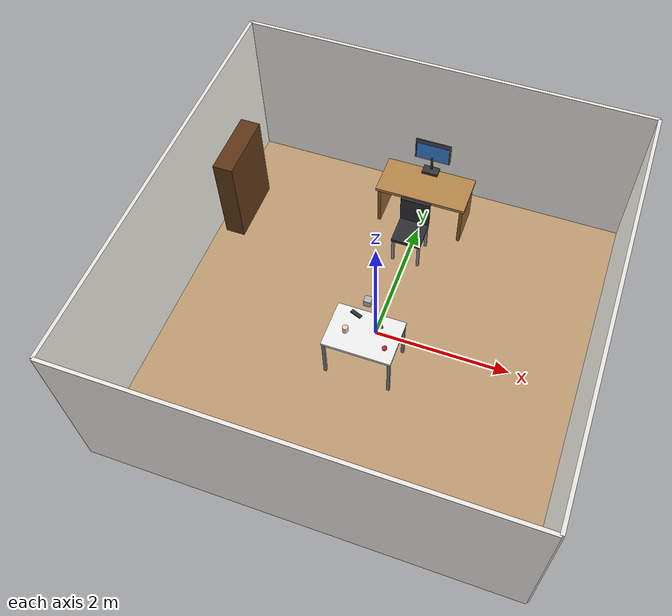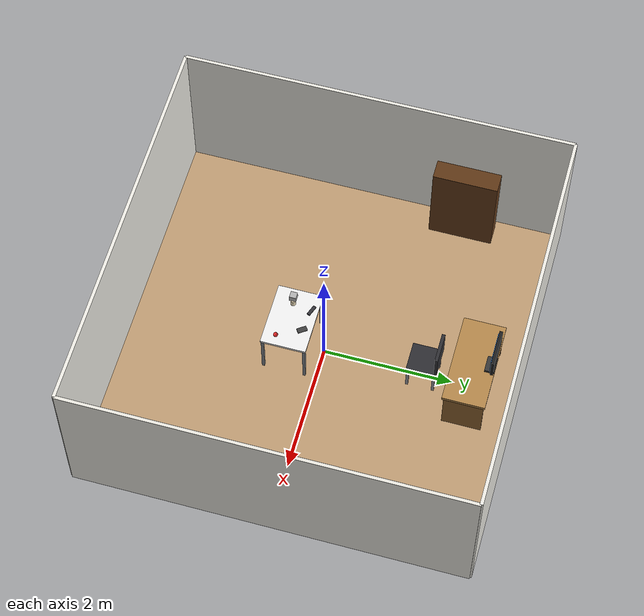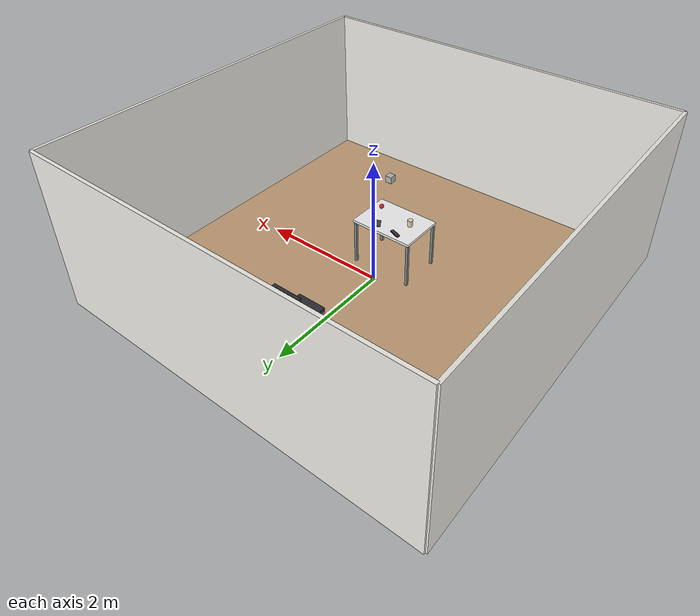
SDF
<?xml version="1.0" ?>
<sdf version="1.10">
  <world name="bps_room">

    <!-- ==================== PHYSICS ==================== -->
    <physics name="1ms" type="ignored">
      <max_step_size>0.001</max_step_size>
      <real_time_factor>1</real_time_factor>
      <real_time_update_rate>1000</real_time_update_rate>
    </physics>

    <gravity>0 0 -9.8</gravity>
    <magnetic_field>5.5645e-06 2.28758e-05 -4.23884e-05</magnetic_field>
    <atmosphere type="adiabatic"/>

    <!-- ==================== SCENE ==================== -->
    <scene>
      <ambient>0.4 0.4 0.4 1</ambient>
      <background>0.7 0.7 0.7 1</background>
      <shadows>true</shadows>
    </scene>

    <!-- ==================== PLUGINS ==================== -->
    <plugin name="gz::sim::systems::Physics"
            filename="gz-sim-physics-system"/>
    <plugin name="gz::sim::systems::UserCommands"
            filename="gz-sim-user-commands-system"/>
    <plugin name="gz::sim::systems::SceneBroadcaster"
            filename="gz-sim-scene-broadcaster-system"/>
    <plugin name="gz::sim::systems::Sensors"
            filename="gz-sim-sensors-system">
      <render_engine>ogre2</render_engine>
    </plugin>
    <plugin name="gz::sim::systems::Contact"
            filename="gz-sim-contact-system"/>
    <plugin
    filename="gz-sim-label-system"
    name="gz::sim::systems::Label"/>

    <!-- ==================== LIGHTING ==================== -->
    <light name="sun" type="directional">
      <pose>0 0 10 0 0 0</pose>
      <cast_shadows>true</cast_shadows>
      <intensity>1</intensity>
      <direction>-0.5 0.1 -0.9</direction>
      <diffuse>0.8 0.8 0.8 1</diffuse>
      <specular>0.2 0.2 0.2 1</specular>
      <attenuation>
        <range>1000</range>
        <linear>0.01</linear>
        <constant>0.9</constant>
        <quadratic>0.001</quadratic>
      </attenuation>
      <spot>
        <inner_angle>0</inner_angle>
        <outer_angle>0</outer_angle>
        <falloff>0</falloff>
      </spot>
    </light>

    <light name="ambient_fill" type="directional">
      <pose>0 0 4 0 0 0</pose>
      <diffuse>0.4 0.4 0.4 1</diffuse>
      <specular>0.0 0.0 0.0 1</specular>
      <direction>0.3 -0.3 -1</direction>
    </light>

    <!-- ==================== ROOM SHELL ==================== -->

    <!-- Floor: 6 m x 6 m — warm light oak -->
    <model name="floor">
      <static>true</static>
      <pose>0 0 0 0 0 0</pose>
      <link name="link">
        <collision name="collision">
          <geometry><box><size>6 6 0.02</size></box></geometry>
        </collision>
        <visual name="visual">
          <geometry><box><size>6 6 0.02</size></box></geometry>
          <material>
            <ambient>0.76 0.62 0.46 1</ambient>
            <diffuse>0.76 0.62 0.46 1</diffuse>
          </material>
        </visual>
      </link>
    </model>

    <!-- Wall North (y = +3) — thickness 0.05, clean off-white -->
    <model name="wall_north">
      <static>true</static>
      <pose>0 3 1.25 0 0 0</pose>
      <link name="link">
        <collision name="collision">
          <geometry><box><size>6 0.05 2.5</size></box></geometry>
        </collision>
        <visual name="visual">
          <geometry><box><size>6 0.05 2.5</size></box></geometry>
          <material>
            <ambient>0.95 0.94 0.91 1</ambient>
            <diffuse>0.95 0.94 0.91 1</diffuse>
          </material>
        </visual>
      </link>
    </model>

    <!-- Wall South (y = -3) — thickness 0.05 -->
    <model name="wall_south">
      <static>true</static>
      <pose>0 -3 1.25 0 0 0</pose>
      <link name="link">
        <collision name="collision">
          <geometry><box><size>6 0.05 2.5</size></box></geometry>
        </collision>
        <visual name="visual">
          <geometry><box><size>6 0.05 2.5</size></box></geometry>
          <material>
            <ambient>0.95 0.94 0.91 1</ambient>
            <diffuse>0.95 0.94 0.91 1</diffuse>
          </material>
        </visual>
      </link>
    </model>

    <!-- Wall East (x = +3) — thickness 0.05 -->
    <model name="wall_east">
      <static>true</static>
      <pose>3 0 1.25 0 0 0</pose>
      <link name="link">
        <collision name="collision">
          <geometry><box><size>0.05 6 2.5</size></box></geometry>
        </collision>
        <visual name="visual">
          <geometry><box><size>0.05 6 2.5</size></box></geometry>
          <material>
            <ambient>0.93 0.92 0.89 1</ambient>
            <diffuse>0.93 0.92 0.89 1</diffuse>
          </material>
        </visual>
      </link>
    </model>

    <!-- Wall West (x = -3) — thickness 0.05 -->
    <model name="wall_west">
      <static>true</static>
      <pose>-3 0 1.25 0 0 0</pose>
      <link name="link">
        <collision name="collision">
          <geometry><box><size>0.05 6 2.5</size></box></geometry>
        </collision>
        <visual name="visual">
          <geometry><box><size>0.05 6 2.5</size></box></geometry>
          <material>
            <ambient>0.93 0.92 0.89 1</ambient>
            <diffuse>0.93 0.92 0.89 1</diffuse>
          </material>
        </visual>
      </link>
    </model>

    <!-- ==================== BOOKSHELF (west wall) ==================== -->

    <!-- Body — dark walnut -->
    <model name="bookshelf_body">
      <static>true</static>
      <pose>-2.7 1.5 0.75 0 0 0</pose>
      <link name="link">
        <collision name="collision">
          <geometry><box><size>0.3 1.0 1.5</size></box></geometry>
        </collision>
        <visual name="visual">
          <geometry><box><size>0.3 1.0 1.5</size></box></geometry>
          <material>
            <ambient>0.38 0.22 0.09 1</ambient>
            <diffuse>0.38 0.22 0.09 1</diffuse>
          </material>
        </visual>
      </link>
    </model>

    <!-- Shelves — slightly lighter walnut -->
    <model name="shelf_1">
      <static>true</static>
      <pose>-2.7 1.5 0.4 0 0 0</pose>
      <link name="link">
        <collision name="collision">
          <geometry><box><size>0.28 0.95 0.02</size></box></geometry>
        </collision>
        <visual name="visual">
          <geometry><box><size>0.28 0.95 0.02</size></box></geometry>
          <material>
            <ambient>0.50 0.32 0.14 1</ambient>
            <diffuse>0.50 0.32 0.14 1</diffuse>
          </material>
        </visual>
      </link>
    </model>

    <model name="shelf_2">
      <static>true</static>
      <pose>-2.7 1.5 0.85 0 0 0</pose>
      <link name="link">
        <collision name="collision">
          <geometry><box><size>0.28 0.95 0.02</size></box></geometry>
        </collision>
        <visual name="visual">
          <geometry><box><size>0.28 0.95 0.02</size></box></geometry>
          <material>
            <ambient>0.50 0.32 0.14 1</ambient>
            <diffuse>0.50 0.32 0.14 1</diffuse>
          </material>
        </visual>
      </link>
    </model>

    <model name="shelf_3">
      <static>true</static>
      <pose>-2.7 1.5 1.25 0 0 0</pose>
      <link name="link">
        <collision name="collision">
          <geometry><box><size>0.28 0.95 0.02</size></box></geometry>
        </collision>
        <visual name="visual">
          <geometry><box><size>0.28 0.95 0.02</size></box></geometry>
          <material>
            <ambient>0.50 0.32 0.14 1</ambient>
            <diffuse>0.50 0.32 0.14 1</diffuse>
          </material>
        </visual>
      </link>
    </model>

    <!-- Books — row 1: warm red spines -->
    <model name="books_row1">
      <static>true</static>
      <pose>-2.62 1.5 0.62 0 0 0</pose>
      <link name="link">
        <visual name="visual">
          <geometry><box><size>0.04 0.8 0.2</size></box></geometry>
          <material>
            <ambient>0.78 0.18 0.18 1</ambient>
            <diffuse>0.78 0.18 0.18 1</diffuse>
          </material>
        </visual>
      </link>
    </model>

    <!-- Books — row 2: navy blue spines -->
    <model name="books_row2">
      <static>true</static>
      <pose>-2.62 1.5 1.06 0 0 0</pose>
      <link name="link">
        <visual name="visual">
          <geometry><box><size>0.04 0.7 0.18</size></box></geometry>
          <material>
            <ambient>0.18 0.32 0.72 1</ambient>
            <diffuse>0.18 0.32 0.72 1</diffuse>
          </material>
        </visual>
      </link>
    </model>

    <!-- ==================== DESK + CHAIR (north wall) ==================== -->

    <!-- Desk surface — light oak -->
    <model name="desk">
      <static>true</static>
      <pose>0 2.3 0.75 0 0 0</pose>
      <link name="link">
        <collision name="collision">
          <geometry><box><size>1.4 0.65 0.05</size></box></geometry>
        </collision>
        <visual name="visual">
          <geometry><box><size>1.4 0.65 0.05</size></box></geometry>
          <material>
            <ambient>0.72 0.54 0.30 1</ambient>
            <diffuse>0.72 0.54 0.30 1</diffuse>
          </material>
        </visual>
      </link>
    </model>

    <!-- Desk legs — slightly darker oak -->
    <model name="desk_leg_left">
      <static>true</static>
      <pose>-0.65 2.3 0.375 0 0 0</pose>
      <link name="link">
        <collision name="collision">
          <geometry><box><size>0.05 0.6 0.75</size></box></geometry>
        </collision>
        <visual name="visual">
          <geometry><box><size>0.05 0.6 0.75</size></box></geometry>
          <material>
            <ambient>0.55 0.38 0.18 1</ambient>
            <diffuse>0.55 0.38 0.18 1</diffuse>
          </material>
        </visual>
      </link>
    </model>

    <model name="desk_leg_right">
      <static>true</static>
      <pose>0.65 2.3 0.375 0 0 0</pose>
      <link name="link">
        <collision name="collision">
          <geometry><box><size>0.05 0.6 0.75</size></box></geometry>
        </collision>
        <visual name="visual">
          <geometry><box><size>0.05 0.6 0.75</size></box></geometry>
          <material>
            <ambient>0.55 0.38 0.18 1</ambient>
            <diffuse>0.55 0.38 0.18 1</diffuse>
          </material>
        </visual>
      </link>
    </model>

    <!-- Monitor base — matte charcoal -->
    <model name="monitor_base">
      <static>true</static>
      <pose>0 2.55 0.82 0 0 0</pose>
      <link name="link">
        <collision name="collision">
          <geometry><box><size>0.25 0.15 0.04</size></box></geometry>
        </collision>
        <visual name="visual">
          <geometry><box><size>0.25 0.15 0.04</size></box></geometry>
          <material>
            <ambient>0.22 0.22 0.22 1</ambient>
            <diffuse>0.22 0.22 0.22 1</diffuse>
          </material>
        </visual>
      </link>
    </model>

    <!-- Monitor stand — matte charcoal -->
    <model name="monitor_stand">
      <static>true</static>
      <pose>0 2.58 0.97 0 0 0</pose>
      <link name="link">
        <collision name="collision">
          <geometry><box><size>0.03 0.03 0.26</size></box></geometry>
        </collision>
        <visual name="visual">
          <geometry><box><size>0.03 0.03 0.26</size></box></geometry>
          <material>
            <ambient>0.22 0.22 0.22 1</ambient>
            <diffuse>0.22 0.22 0.22 1</diffuse>
          </material>
        </visual>
      </link>
    </model>

    <!-- Monitor bezel — near-black -->
    <model name="monitor_screen">
      <static>true</static>
      <pose>0 2.6 1.2 0 0 0</pose>
      <link name="link">
        <collision name="collision">
          <geometry><box><size>0.55 0.05 0.35</size></box></geometry>
        </collision>
        <visual name="visual">
          <geometry><box><size>0.55 0.05 0.35</size></box></geometry>
          <material>
            <ambient>0.12 0.12 0.12 1</ambient>
            <diffuse>0.12 0.12 0.12 1</diffuse>
          </material>
        </visual>
      </link>
    </model>

    <!-- Monitor face — bright blueish screen glow -->
    <model name="monitor_face">
      <static>true</static>
      <pose>0 2.57 1.2 0 0 0</pose>
      <link name="link">
        <visual name="visual">
          <geometry><box><size>0.5 0.01 0.3</size></box></geometry>
          <material>
            <ambient>0.22 0.52 0.88 1</ambient>
            <diffuse>0.22 0.52 0.88 1</diffuse>
            <emissive>0.10 0.25 0.45 1</emissive>
          </material>
        </visual>
      </link>
    </model>

    <!-- Chair seat — dark charcoal fabric -->
    <model name="chair_seat">
      <static>true</static>
      <pose>0 1.55 0.48 0 0 0</pose>
      <link name="link">
        <collision name="collision">
          <geometry><box><size>0.45 0.45 0.05</size></box></geometry>
        </collision>
        <visual name="visual">
          <geometry><box><size>0.45 0.45 0.05</size></box></geometry>
          <material>
            <ambient>0.18 0.18 0.20 1</ambient>
            <diffuse>0.18 0.18 0.20 1</diffuse>
          </material>
        </visual>
      </link>
    </model>

    <!-- Chair back — dark charcoal fabric -->
    <model name="chair_back">
      <static>true</static>
      <pose>0 1.77 0.75 0 0 0</pose>
      <link name="link">
        <collision name="collision">
          <geometry><box><size>0.45 0.05 0.45</size></box></geometry>
        </collision>
        <visual name="visual">
          <geometry><box><size>0.45 0.05 0.45</size></box></geometry>
          <material>
            <ambient>0.18 0.18 0.20 1</ambient>
            <diffuse>0.18 0.18 0.20 1</diffuse>
          </material>
        </visual>
      </link>
    </model>

    <!-- Chair legs — brushed steel -->
    <model name="chair_leg_fl">
      <static>true</static>
      <pose>-0.2 1.35 0.24 0 0 0</pose>
      <link name="link">
        <collision name="collision">
          <geometry><box><size>0.04 0.04 0.48</size></box></geometry>
        </collision>
        <visual name="visual">
          <geometry><box><size>0.04 0.04 0.48</size></box></geometry>
          <material>
            <ambient>0.60 0.60 0.62 1</ambient>
            <diffuse>0.60 0.60 0.62 1</diffuse>
          </material>
        </visual>
      </link>
    </model>

    <model name="chair_leg_fr">
      <static>true</static>
      <pose>0.2 1.35 0.24 0 0 0</pose>
      <link name="link">
        <collision name="collision">
          <geometry><box><size>0.04 0.04 0.48</size></box></geometry>
        </collision>
        <visual name="visual">
          <geometry><box><size>0.04 0.04 0.48</size></box></geometry>
          <material>
            <ambient>0.60 0.60 0.62 1</ambient>
            <diffuse>0.60 0.60 0.62 1</diffuse>
          </material>
        </visual>
      </link>
    </model>

    <model name="chair_leg_bl">
      <static>true</static>
      <pose>-0.2 1.75 0.24 0 0 0</pose>
      <link name="link">
        <collision name="collision">
          <geometry><box><size>0.04 0.04 0.48</size></box></geometry>
        </collision>
        <visual name="visual">
          <geometry><box><size>0.04 0.04 0.48</size></box></geometry>
          <material>
            <ambient>0.60 0.60 0.62 1</ambient>
            <diffuse>0.60 0.60 0.62 1</diffuse>
          </material>
        </visual>
      </link>
    </model>

    <model name="chair_leg_br">
      <static>true</static>
      <pose>0.2 1.75 0.24 0 0 0</pose>
      <link name="link">
        <collision name="collision">
          <geometry><box><size>0.04 0.04 0.48</size></box></geometry>
        </collision>
        <visual name="visual">
          <geometry><box><size>0.04 0.04 0.48</size></box></geometry>
          <material>
            <ambient>0.60 0.60 0.62 1</ambient>
            <diffuse>0.60 0.60 0.62 1</diffuse>
          </material>
        </visual>
      </link>
    </model>

    <!-- ==================== EXPERIMENT TABLE (permanent, centre) ==================== -->

    <!-- Table top — clean white lab surface -->
    <model name="experiment_table">
      <static>true</static>
      <pose>0 -0.5 0.75 0 0 0</pose>
      <link name="link">
        <collision name="collision">
          <geometry><box><size>1.0 0.7 0.04</size></box></geometry>
        </collision>
        <visual name="visual">
          <geometry><box><size>1.0 0.7 0.04</size></box></geometry>
          <material>
            <ambient>0.96 0.96 0.96 1</ambient>
            <diffuse>0.96 0.96 0.96 1</diffuse>
          </material>
        </visual>
      </link>
    </model>

    <!-- Table legs — medium steel gray -->
    <model name="table_leg_fl">
      <static>true</static>
      <pose>-0.47 -0.82 0.375 0 0 0</pose>
      <link name="link">
        <collision name="collision">
          <geometry><box><size>0.04 0.04 0.75</size></box></geometry>
        </collision>
        <visual name="visual">
          <geometry><box><size>0.04 0.04 0.75</size></box></geometry>
          <material>
            <ambient>0.50 0.52 0.54 1</ambient>
            <diffuse>0.50 0.52 0.54 1</diffuse>
          </material>
        </visual>
      </link>
    </model>

    <model name="table_leg_fr">
      <static>true</static>
      <pose>0.47 -0.82 0.375 0 0 0</pose>
      <link name="link">
        <collision name="collision">
          <geometry><box><size>0.04 0.04 0.75</size></box></geometry>
        </collision>
        <visual name="visual">
          <geometry><box><size>0.04 0.04 0.75</size></box></geometry>
          <material>
            <ambient>0.50 0.52 0.54 1</ambient>
            <diffuse>0.50 0.52 0.54 1</diffuse>
          </material>
        </visual>
      </link>
    </model>

    <model name="table_leg_bl">
      <static>true</static>
      <pose>-0.47 -0.18 0.375 0 0 0</pose>
      <link name="link">
        <collision name="collision">
          <geometry><box><size>0.04 0.04 0.75</size></box></geometry>
        </collision>
        <visual name="visual">
          <geometry><box><size>0.04 0.04 0.75</size></box></geometry>
          <material>
            <ambient>0.50 0.52 0.54 1</ambient>
            <diffuse>0.50 0.52 0.54 1</diffuse>
          </material>
        </visual>
      </link>
    </model>

    <model name="table_leg_br">
      <static>true</static>
      <pose>0.47 -0.18 0.375 0 0 0</pose>
      <link name="link">
        <collision name="collision">
          <geometry><box><size>0.04 0.04 0.75</size></box></geometry>
        </collision>
        <visual name="visual">
          <geometry><box><size>0.04 0.04 0.75</size></box></geometry>
          <material>
            <ambient>0.50 0.52 0.54 1</ambient>
            <diffuse>0.50 0.52 0.54 1</diffuse>
          </material>
        </visual>
      </link>
    </model>

    <!-- ==================== EXPERIMENT OBJECTS (ON TABLE) ==================== -->

    <!-- Object 1: Coffee Mug (ceramic, upright cylinder) — Semantic ID: 1 -->
    <model name="coffee_mug_sem1">
      <static>true</static>
      <pose>-0.25 -0.55 0.82 0 0 0</pose>
      <link name="link">
        <collision name="collision">
          <geometry>
            <cylinder>
              <radius>0.04</radius>
              <length>0.10</length>
            </cylinder>
          </geometry>
        </collision>
        <visual name="visual">
          <geometry>
            <cylinder>
              <radius>0.04</radius>
              <length>0.10</length>
            </cylinder>
          </geometry>

          <material>
            <ambient>0.93 0.87 0.73 1</ambient>
            <diffuse>0.93 0.87 0.73 1</diffuse>
          </material>

          <plugin
              filename="gz-sim-label-system"
              name="gz::sim::systems::Label">
            <label>1</label>
          </plugin>
        </visual>
      </link>
    </model>

    <!-- Object 2: Smartphone (flat, thin box, rotated ~35°) — Semantic ID: 2 -->
    <model name="smartphone_sem2">
      <static>true</static>
      <pose>0.15 -0.30 0.775 0 0 0.6109</pose>
      <link name="link">
        <collision name="collision">
          <geometry>
            <box><size>0.08 0.15 0.015</size></box>
          </geometry>
        </collision>
        <visual name="visual">
          <geometry>
            <box>
              <size>0.08 0.15 0.015</size>
            </box>
          </geometry>

          <material>
            <ambient>0.25 0.25 0.25 1</ambient>
            <diffuse>0.25 0.25 0.25 1</diffuse>
          </material>

          <plugin
              filename="gz-sim-label-system"
              name="gz::sim::systems::Label">
            <label>2</label>
          </plugin>
        </visual>
      </link>
    </model>

    <!-- Object 3: Apple (spherical, red) — Semantic ID: 3 -->
    <model name="apple_sem3">
      <static>true</static>
      <pose>0.35 -0.65 0.805 0 0 0</pose>
      <link name="link">
        <collision name="collision">
          <geometry>
            <sphere>
              <radius>0.035</radius>
            </sphere>
          </geometry>
        </collision>
        <visual name="visual">
          <geometry>
            <sphere>
              <radius>0.035</radius>
            </sphere>
          </geometry>

          <material>
            <ambient>0.87 0.15 0.15 1</ambient>
            <diffuse>0.87 0.15 0.15 1</diffuse>
          </material>

          <plugin
              filename="gz-sim-label-system"
              name="gz::sim::systems::Label">
            <label>3</label>
          </plugin>
        </visual>
      </link>
    </model>

    <!-- Object 4: Remote Control (thin long box, rotated ~70°) — Semantic ID: 4 -->
    <model name="remote_control_sem4">
      <static>true</static>
      <pose>-0.20 -0.25 0.78 0 0 1.2217</pose>
      <link name="link">
        <collision name="collision">
          <geometry>
            <box><size>0.05 0.17 0.02</size></box>
          </geometry>
        </collision>
        <visual name="visual">
          <geometry>
            <box>
              <size>0.05 0.17 0.02</size>
            </box>
          </geometry>

          <material>
            <ambient>0.20 0.20 0.22 1</ambient>
            <diffuse>0.20 0.20 0.22 1</diffuse>
          </material>

          <plugin
              filename="gz-sim-label-system"
              name="gz::sim::systems::Label">
            <label>4</label>
          </plugin>
        </visual>
      </link>
    </model>

    <!-- ==================== CAMERA (permanent, top-down above table) ==================== -->
    <model name="depth_camera">
      <static>true</static>
      <self_collide>false</self_collide>
      <pose>0 -0.5 1.57 0 1.5708 0</pose>
      <link name="link">
        <pose>0.05 0.05 0.05 0 0 0</pose>
        <inertial>
          <mass>0.1</mass>
          <inertia>
            <ixx>0.000166667</ixx><iyy>0.000166667</iyy><izz>0.000166667</izz>
            <ixy>0</ixy><ixz>0</ixz><iyz>0</iyz>
          </inertia>
          <pose>0 0 0 0 0 0</pose>
        </inertial>
        <collision name="collision">
          <geometry><box><size>0.1 0.1 0.1</size></box></geometry>
          <surface>
            <friction><ode/></friction>
            <bounce/>
            <contact/>
          </surface>
        </collision>
        <visual name="visual">
          <geometry><box><size>0.1 0.1 0.1</size></box></geometry>
        </visual>

        <!-- Depth sensor -->
        <sensor name="depth_camera1" type="depth_camera">
          <pose>0 0 0 0 0 0</pose>
          <topic>depth_camera</topic>
          <update_rate>10</update_rate>
          <enable_metrics>false</enable_metrics>
          <camera>
            <horizontal_fov>1.2</horizontal_fov>
            <image>
              <width>640</width>
              <height>480</height>
              <format>R_FLOAT32</format>
              <anti_aliasing>4</anti_aliasing>
            </image>
            <camera_info_topic>__default__</camera_info_topic>
            <trigger_topic></trigger_topic>
            <triggered>false</triggered>
            <clip><near>0.1</near><far>2</far></clip>
            <save enabled="false"><path>__default__</path></save>
            <visibility_mask>4294967295</visibility_mask>
            <noise><type>none</type><mean>0</mean><stddev>0</stddev></noise>
            <distortion>
              <k1>0</k1><k2>0</k2><k3>0</k3>
              <p1>0</p1><p2>0</p2>
              <center>0.5 0.5</center>
            </distortion>
            <lens>
              <type>stereographic</type>
              <scale_to_hfov>true</scale_to_hfov>
              <cutoff_angle>1.5707963267948966</cutoff_angle>
              <env_texture_size>256</env_texture_size>
            </lens>
            <optical_frame_id></optical_frame_id>
          </camera>
        </sensor>

        <!-- RGB sensor -->
        <sensor name="rgb_camera" type="camera">
          <pose>0 0 0 0 0 0</pose>
          <topic>rgb_camera</topic>
          <update_rate>10</update_rate>
          <enable_metrics>false</enable_metrics>
          <camera>
            <horizontal_fov>1.2</horizontal_fov>
            <image>
              <width>640</width>
              <height>480</height>
              <format>RGB_INT8</format>
              <anti_aliasing>4</anti_aliasing>
            </image>
            <camera_info_topic>__default__</camera_info_topic>
            <trigger_topic></trigger_topic>
            <triggered>false</triggered>
            <clip><near>0.1</near><far>2</far></clip>
            <save enabled="false"><path>__default__</path></save>
            <visibility_mask>4294967295</visibility_mask>
            <noise><type>none</type><mean>0</mean><stddev>0</stddev></noise>
            <distortion>
              <k1>0</k1><k2>0</k2><k3>0</k3>
              <p1>0</p1><p2>0</p2>
              <center>0.5 0.5</center>
            </distortion>
            <lens>
              <type>stereographic</type>
              <scale_to_hfov>true</scale_to_hfov>
              <cutoff_angle>1.5707963267948966</cutoff_angle>
              <env_texture_size>256</env_texture_size>
            </lens>
            <optical_frame_id></optical_frame_id>
          </camera>
        </sensor>

        <sensor name="semantic_camera" type="segmentation">
          <pose>0 0 0 0 0 0</pose>
          <topic>semantic_camera</topic>
          <always_on>true</always_on>
          <update_rate>10</update_rate>
          <camera>
            <segmentation_type>semantic</segmentation_type>
            <horizontal_fov>1.2</horizontal_fov>
            <image>
              <width>640</width>
              <height>480</height>
              <format>RGB_INT8</format>
              <anti_aliasing>4</anti_aliasing>
            </image>
            <clip>
              <near>0.1</near>
              <far>2.0</far>
            </clip>
          </camera>
        </sensor>

        <enable_wind>false</enable_wind>
      </link>
    </model>

  </world>
</sdf>
